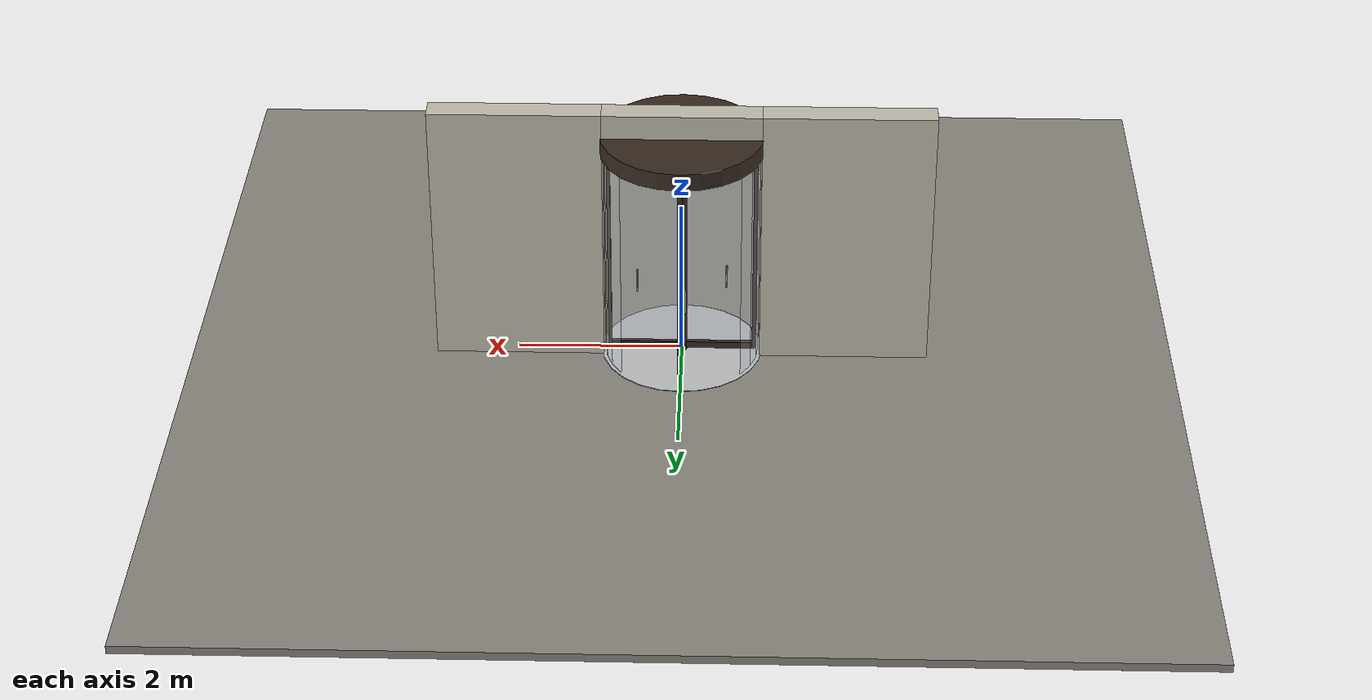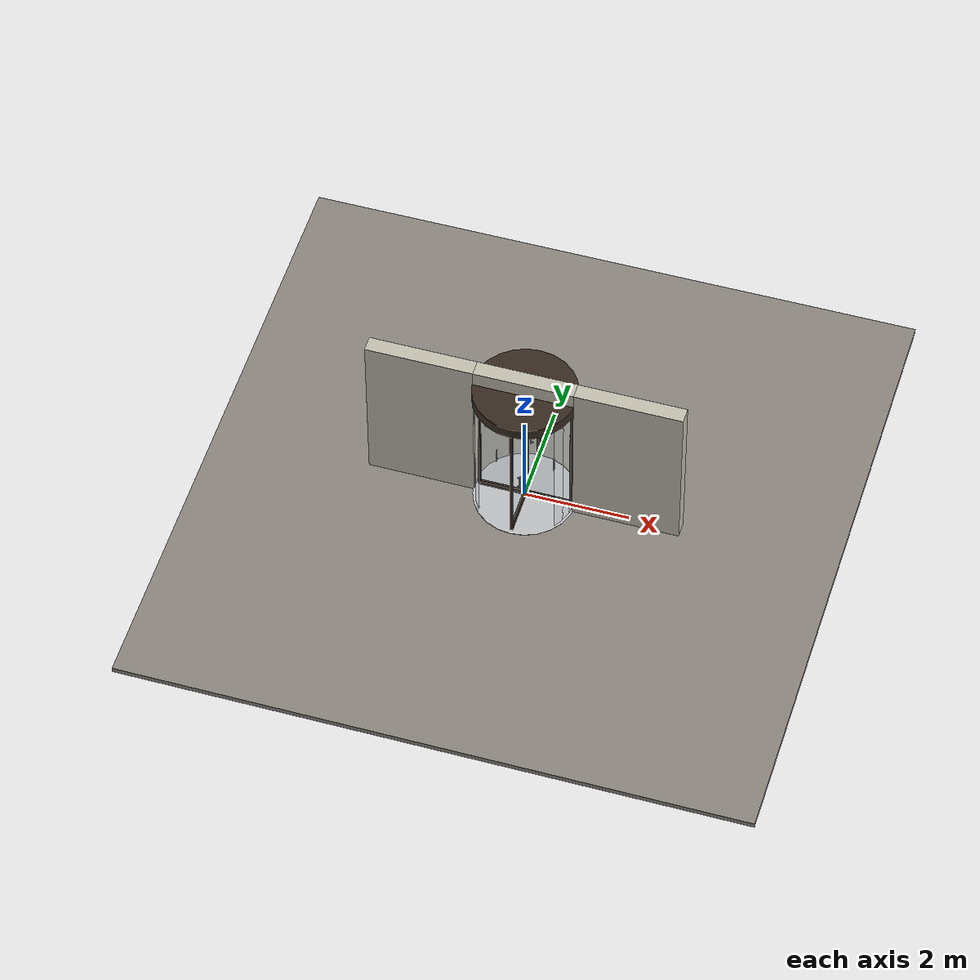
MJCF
<?xml version="1.0" ?>
<mujoco model="db0932_revolving_full">
  <compiler angle="radian" meshdir="../../hardware" texturedir="../../textures" autolimits="true" inertiafromgeom="false"/>
  <option timestep="0.002" integrator="implicitfast" cone="elliptic" impratio="10" noslip_iterations="3">
    <flag multiccd="enable"/>
  </option>
  <size memory="16M"/>
  <default>
    <geom condim="4" solref="0.005 1" solimp="0.95 0.99 0.001"/>
    <joint solreflimit="0.005 1" solimplimit="0.95 0.99 0.001"/>
    <tendon solreflimit="0.005 1"/>
    <equality solref="0.002 1"/>
  </default>
  <visual>
    <headlight ambient="0.4 0.4 0.4" diffuse="0.7 0.7 0.7" specular="0.2 0.2 0.2"/>
    <quality shadowsize="4096"/>
    <map znear="0.01" zfar="60"/>
  </visual>
  <asset>
    <material name="mat_floor" rgba="0.55 0.53 0.5 1" specular="0.2" shininess="0.15" reflectance="0"/>
    <material name="mat_wall" rgba="0.78 0.76 0.7 1" specular="0.2" shininess="0.1" reflectance="0"/>
    <material name="mat_frame" rgba="0.22 0.17 0.13 1" specular="0.8" shininess="0.6" reflectance="0.4"/>
    <material name="mat_drum_glass" rgba="0.85 0.92 0.95 0.25" specular="0.2" shininess="0.95" reflectance="0.1"/>
    <material name="mat_floor_ring" rgba="0.75 0.76 0.77 1" specular="0.8" shininess="0.65" reflectance="0.4"/>
    <material name="mat_op_stainless" rgba="0.75 0.76 0.77 1" specular="0.8" shininess="0.65" reflectance="0.4"/>
    <texture name="skybox" type="skybox" builtin="gradient" rgb1="0.6 0.7 0.85" rgb2="0.9 0.92 0.95" width="256" height="256"/>
  </asset>
  <worldbody>
    <light name="sun" pos="1.5 -2.5 4" dir="-0.3 0.5 -0.8" directional="true" diffuse="0.8 0.8 0.8" specular="0.3 0.3 0.3" castshadow="true"/>
    <light name="fill" pos="-1.5 2.5 3" dir="0.3 -0.5 -0.7" directional="true" diffuse="0.35 0.35 0.4" castshadow="false"/>
    <camera name="robot_view" pos="0 -3.4375 2.4625" xyaxes="1 0 0 0 0.26963 0.962964" fovy="52"/>
    <camera name="far_view" pos="0 3.4375 2.4625" xyaxes="-1 0 0 0 -0.26963 0.962964" fovy="52"/>
    <camera name="iso" pos="2.6125 -2.8875 3.0125" xyaxes="0.741536 0.670913 0 -0.242917 0.268487 0.932151" fovy="46"/>
    <camera name="detail_handle" pos="0.55 -1.1 1.35" xyaxes="0.975133 0.221621 0 -0.065674 0.288965 0.955084" fovy="38"/>
    <geom name="floor" type="box" size="6 6 0.05" pos="0 0 -0.05" material="mat_floor" group="0" contype="1" conaffinity="1" friction="0.8 0.005 0.0001" density="2400"/>
    <geom name="wall_left" type="box" size="1.025 0.15 1.65" pos="-1.975 0 1.65" material="mat_wall" group="0" contype="1" conaffinity="1" friction="0.6 0.005 0.0001" density="800"/>
    <geom name="wall_right" type="box" size="1.025 0.15 1.65" pos="1.975 0 1.65" material="mat_wall" group="0" contype="1" conaffinity="1" friction="0.6 0.005 0.0001" density="800"/>
    <geom name="wall_header" type="box" size="0.95 0.15 0.15" pos="0 0 3.15" material="mat_wall" group="0" contype="1" conaffinity="1" friction="0.6 0.005 0.0001" density="800"/>
    <geom name="drum_0" type="box" size="0.105224 0.006 1.3925" pos="0.914215 0.103007 1.3925" quat="0.666347 0 0 0.745642" material="mat_drum_glass" group="0" contype="1" conaffinity="1" friction="0.6 0.005 0.0001" density="2500"/>
    <geom name="drum_1" type="box" size="0.105224 0.006 1.3925" pos="0.868373 0.303857 1.3925" quat="0.578671 0 0 0.815561" material="mat_drum_glass" group="0" contype="1" conaffinity="1" friction="0.6 0.005 0.0001" density="2500"/>
    <geom name="drum_2" type="box" size="0.105224 0.006 1.3925" pos="0.778986 0.48947 1.3925" quat="0.483719 0 0 0.875223" material="mat_drum_glass" group="0" contype="1" conaffinity="1" friction="0.6 0.005 0.0001" density="2500"/>
    <geom name="drum_11" type="box" size="0.105224 0.006 1.3925" pos="-0.778986 0.48947 1.3925" quat="-0.483719 0 0 0.875223" material="mat_drum_glass" group="0" contype="1" conaffinity="1" friction="0.6 0.005 0.0001" density="2500"/>
    <geom name="drum_12" type="box" size="0.105224 0.006 1.3925" pos="-0.868373 0.303857 1.3925" quat="-0.578671 0 0 0.815561" material="mat_drum_glass" group="0" contype="1" conaffinity="1" friction="0.6 0.005 0.0001" density="2500"/>
    <geom name="drum_13" type="box" size="0.105224 0.006 1.3925" pos="-0.914215 0.103007 1.3925" quat="-0.666347 0 0 0.745642" material="mat_drum_glass" group="0" contype="1" conaffinity="1" friction="0.6 0.005 0.0001" density="2500"/>
    <geom name="drum_14" type="box" size="0.105224 0.006 1.3925" pos="-0.914215 -0.103007 1.3925" quat="-0.745642 0 0 0.666347" material="mat_drum_glass" group="0" contype="1" conaffinity="1" friction="0.6 0.005 0.0001" density="2500"/>
    <geom name="drum_15" type="box" size="0.105224 0.006 1.3925" pos="-0.868373 -0.303857 1.3925" quat="-0.815561 0 0 0.578671" material="mat_drum_glass" group="0" contype="1" conaffinity="1" friction="0.6 0.005 0.0001" density="2500"/>
    <geom name="drum_16" type="box" size="0.105224 0.006 1.3925" pos="-0.778986 -0.48947 1.3925" quat="-0.875223 0 0 0.483719" material="mat_drum_glass" group="0" contype="1" conaffinity="1" friction="0.6 0.005 0.0001" density="2500"/>
    <geom name="drum_25" type="box" size="0.105224 0.006 1.3925" pos="0.778986 -0.48947 1.3925" quat="-0.875223 0 0 -0.483719" material="mat_drum_glass" group="0" contype="1" conaffinity="1" friction="0.6 0.005 0.0001" density="2500"/>
    <geom name="drum_26" type="box" size="0.105224 0.006 1.3925" pos="0.868373 -0.303857 1.3925" quat="-0.815561 0 0 -0.578671" material="mat_drum_glass" group="0" contype="1" conaffinity="1" friction="0.6 0.005 0.0001" density="2500"/>
    <geom name="drum_27" type="box" size="0.105224 0.006 1.3925" pos="0.914215 -0.103007 1.3925" quat="-0.745642 0 0 -0.666347" material="mat_drum_glass" group="0" contype="1" conaffinity="1" friction="0.6 0.005 0.0001" density="2500"/>
    <geom name="drum_canopy" type="cylinder" size="0.98 0.1075" pos="0 0 2.8925" material="mat_frame" group="0" contype="1" conaffinity="1" friction="0.6 0.005 0.0001" density="300"/>
    <geom name="rotor_top_bearing" type="cylinder" size="0.075 0.003" pos="0 0 2.782" material="mat_frame" group="0" contype="1" conaffinity="1" friction="0.6 0.005 0.0001" density="2700"/>
    <geom name="drum_floor_ring" type="cylinder" size="0.98 0.003" pos="0 0 0.003" material="mat_floor_ring" group="1" contype="0" conaffinity="0" density="7900"/>
    <geom name="rotor_floor_pivot" type="cylinder" size="0.075 0.003" pos="0 0 0.009" material="mat_frame" group="0" contype="1" conaffinity="1" friction="0.6 0.005 0.0001" density="2700"/>
    <site name="approach_point" pos="0 -1.9 0" quat="1 0 0 0" size="0.05" rgba="0.2 0.9 0.2 0.5" group="4"/>
    <site name="goal_point" pos="0 1.9 0" quat="1 0 0 0" size="0.05" rgba="0.2 0.9 0.2 0.5" group="4"/>
    <site name="door_plane_center" pos="0 0 1.35" quat="1 0 0 0" size="0.02" rgba="0.2 0.9 0.2 0.5" group="4"/>
    <body name="rotor" pos="0 0 0">
      <inertial pos="0 0 1.393196" mass="237.85" quat="0.707107 0 0.707107 0" diaginertia="69.014812954 224.655572845 224.655572845"/>
      <joint name="rotor_hinge" type="hinge" axis="0 0 1" limited="false" damping="31" frictionloss="4.916753" armature="0.5"/>
      <geom name="rotor_shaft" type="cylinder" size="0.06 1.375" pos="0 0 1.395" material="mat_frame" group="0" contype="1" conaffinity="1" friction="0.6 0.005 0.0001" density="2700"/>
      <geom name="rotor_pintle_b" type="cylinder" size="0.03 0.008" pos="0 0 0.016" material="mat_frame" group="1" contype="0" conaffinity="0" density="2700"/>
      <geom name="rotor_pintle_t" type="cylinder" size="0.03 0.0085" pos="0 0 2.7745" material="mat_frame" group="1" contype="0" conaffinity="0" density="2700"/>
      <geom name="wing_0_glass" type="box" size="0.43 0.005 1.3" pos="0.45 0 1.4" material="mat_drum_glass" group="0" contype="1" conaffinity="1" friction="0.6 0.005 0.0001" density="2500"/>
      <geom name="wing_0_stile" type="box" size="0.02 0.03 1.375" pos="0.88 0 1.395" material="mat_frame" group="0" contype="1" conaffinity="1" friction="0.6 0.005 0.0001" density="2700"/>
      <geom name="wing_0_rail_b" type="box" size="0.43 0.03 0.04" pos="0.43 0 0.06" material="mat_frame" group="0" contype="1" conaffinity="1" friction="0.6 0.005 0.0001" density="2700"/>
      <geom name="wing_0_rail_t" type="box" size="0.43 0.03 0.04" pos="0.43 0 2.73" material="mat_frame" group="0" contype="1" conaffinity="1" friction="0.6 0.005 0.0001" density="2700"/>
      <geom name="wing_0_bar" type="capsule" size="0.012 0.15" pos="0.54 0.055 1" material="mat_op_stainless" group="0" contype="1" conaffinity="1" friction="0.7 0.01 0.0001" density="7900"/>
      <geom name="wing_0_bar_stud_d" type="cylinder" size="0.009 0.028" pos="0.54 0.031 0.88" quat="0.707107 -0.707107 0 0" material="mat_op_stainless" group="1" contype="0" conaffinity="0" density="7900"/>
      <geom name="wing_0_bar_stud_u" type="cylinder" size="0.009 0.028" pos="0.54 0.031 1.12" quat="0.707107 -0.707107 0 0" material="mat_op_stainless" group="1" contype="0" conaffinity="0" density="7900"/>
      <geom name="wing_1_glass" type="box" size="0.43 0.005 1.3" pos="0 0.45 1.4" quat="0.707107 0 0 0.707107" material="mat_drum_glass" group="0" contype="1" conaffinity="1" friction="0.6 0.005 0.0001" density="2500"/>
      <geom name="wing_1_stile" type="box" size="0.02 0.03 1.375" pos="0 0.88 1.395" quat="0.707107 0 0 0.707107" material="mat_frame" group="0" contype="1" conaffinity="1" friction="0.6 0.005 0.0001" density="2700"/>
      <geom name="wing_1_rail_b" type="box" size="0.43 0.03 0.04" pos="0 0.43 0.06" quat="0.707107 0 0 0.707107" material="mat_frame" group="0" contype="1" conaffinity="1" friction="0.6 0.005 0.0001" density="2700"/>
      <geom name="wing_1_rail_t" type="box" size="0.43 0.03 0.04" pos="0 0.43 2.73" quat="0.707107 0 0 0.707107" material="mat_frame" group="0" contype="1" conaffinity="1" friction="0.6 0.005 0.0001" density="2700"/>
      <geom name="wing_1_bar" type="capsule" size="0.012 0.15" pos="-0.055 0.54 1" material="mat_op_stainless" group="0" contype="1" conaffinity="1" friction="0.7 0.01 0.0001" density="7900"/>
      <geom name="wing_1_bar_stud_d" type="cylinder" size="0.009 0.028" pos="-0.031 0.54 0.88" quat="0.707107 0 -0.707107 0" material="mat_op_stainless" group="1" contype="0" conaffinity="0" density="7900"/>
      <geom name="wing_1_bar_stud_u" type="cylinder" size="0.009 0.028" pos="-0.031 0.54 1.12" quat="0.707107 0 -0.707107 0" material="mat_op_stainless" group="1" contype="0" conaffinity="0" density="7900"/>
      <geom name="wing_2_glass" type="box" size="0.43 0.005 1.3" pos="-0.45 0 1.4" quat="0 0 0 1" material="mat_drum_glass" group="0" contype="1" conaffinity="1" friction="0.6 0.005 0.0001" density="2500"/>
      <geom name="wing_2_stile" type="box" size="0.02 0.03 1.375" pos="-0.88 0 1.395" quat="0 0 0 1" material="mat_frame" group="0" contype="1" conaffinity="1" friction="0.6 0.005 0.0001" density="2700"/>
      <geom name="wing_2_rail_b" type="box" size="0.43 0.03 0.04" pos="-0.43 0 0.06" quat="0 0 0 1" material="mat_frame" group="0" contype="1" conaffinity="1" friction="0.6 0.005 0.0001" density="2700"/>
      <geom name="wing_2_rail_t" type="box" size="0.43 0.03 0.04" pos="-0.43 0 2.73" quat="0 0 0 1" material="mat_frame" group="0" contype="1" conaffinity="1" friction="0.6 0.005 0.0001" density="2700"/>
      <geom name="wing_2_bar" type="capsule" size="0.012 0.15" pos="-0.54 -0.055 1" material="mat_op_stainless" group="0" contype="1" conaffinity="1" friction="0.7 0.01 0.0001" density="7900"/>
      <geom name="wing_2_bar_stud_d" type="cylinder" size="0.009 0.028" pos="-0.54 -0.031 0.88" quat="0.707107 0.707107 0 0" material="mat_op_stainless" group="1" contype="0" conaffinity="0" density="7900"/>
      <geom name="wing_2_bar_stud_u" type="cylinder" size="0.009 0.028" pos="-0.54 -0.031 1.12" quat="0.707107 0.707107 0 0" material="mat_op_stainless" group="1" contype="0" conaffinity="0" density="7900"/>
      <geom name="wing_3_glass" type="box" size="0.43 0.005 1.3" pos="0 -0.45 1.4" quat="-0.707107 0 0 0.707107" material="mat_drum_glass" group="0" contype="1" conaffinity="1" friction="0.6 0.005 0.0001" density="2500"/>
      <geom name="wing_3_stile" type="box" size="0.02 0.03 1.375" pos="0 -0.88 1.395" quat="-0.707107 0 0 0.707107" material="mat_frame" group="0" contype="1" conaffinity="1" friction="0.6 0.005 0.0001" density="2700"/>
      <geom name="wing_3_rail_b" type="box" size="0.43 0.03 0.04" pos="0 -0.43 0.06" quat="-0.707107 0 0 0.707107" material="mat_frame" group="0" contype="1" conaffinity="1" friction="0.6 0.005 0.0001" density="2700"/>
      <geom name="wing_3_rail_t" type="box" size="0.43 0.03 0.04" pos="0 -0.43 2.73" quat="-0.707107 0 0 0.707107" material="mat_frame" group="0" contype="1" conaffinity="1" friction="0.6 0.005 0.0001" density="2700"/>
      <geom name="wing_3_bar" type="capsule" size="0.012 0.15" pos="0.055 -0.54 1" material="mat_op_stainless" group="0" contype="1" conaffinity="1" friction="0.7 0.01 0.0001" density="7900"/>
      <geom name="wing_3_bar_stud_d" type="cylinder" size="0.009 0.028" pos="0.031 -0.54 0.88" quat="0.707107 0 0.707107 0" material="mat_op_stainless" group="1" contype="0" conaffinity="0" density="7900"/>
      <geom name="wing_3_bar_stud_u" type="cylinder" size="0.009 0.028" pos="0.031 -0.54 1.12" quat="0.707107 0 0.707107 0" material="mat_op_stainless" group="1" contype="0" conaffinity="0" density="7900"/>
      <site name="wing_0_push" pos="0.54 0.055 1" quat="1 0 0 0" size="0.015" rgba="0.2 0.9 0.2 0.5" group="4"/>
      <site name="wing_1_push" pos="-0.055 0.54 1" quat="1 0 0 0" size="0.015" rgba="0.2 0.9 0.2 0.5" group="4"/>
      <site name="wing_2_push" pos="-0.54 -0.055 1" quat="1 0 0 0" size="0.015" rgba="0.2 0.9 0.2 0.5" group="4"/>
      <site name="wing_3_push" pos="0.055 -0.54 1" quat="1 0 0 0" size="0.015" rgba="0.2 0.9 0.2 0.5" group="4"/>
    </body>
  </worldbody>
  <sensor>
    <jointpos name="rotor_hinge_pos" joint="rotor_hinge"/>
    <jointvel name="rotor_hinge_vel" joint="rotor_hinge"/>
  </sensor>
</mujoco>
